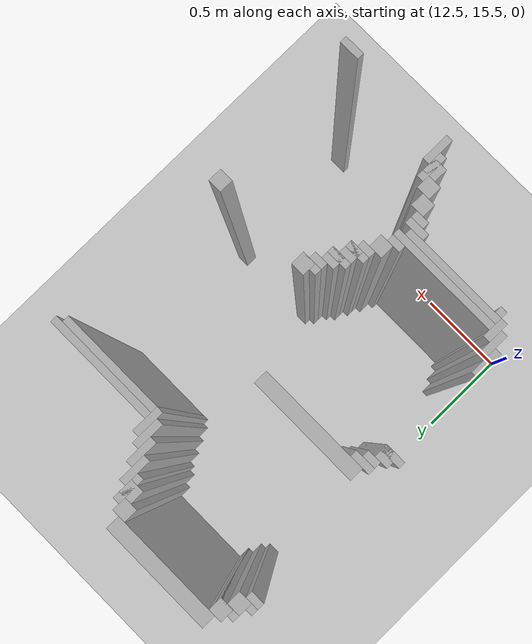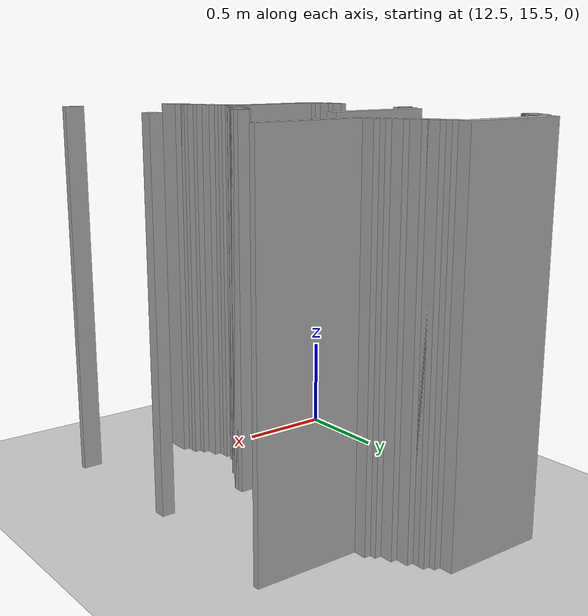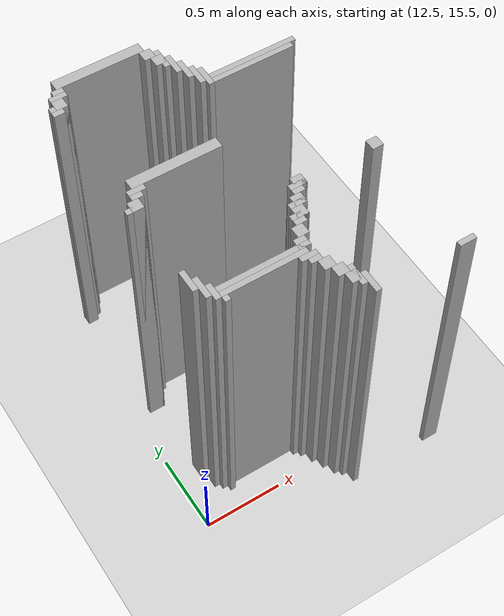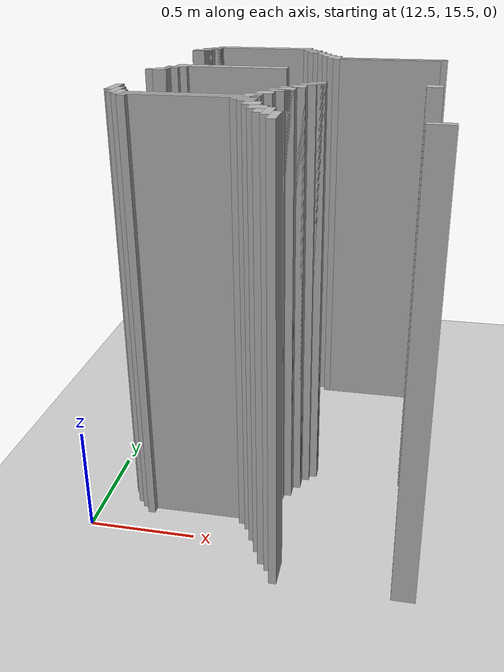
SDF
<sdf version="1.6">
 <world name="slam_world">
  <model name="ground_plane">
   <static>true</static>
   <link name="link">
    <collision name="collision">
     <geometry><plane><normal>0 0 1</normal><size>100 100</size></plane></geometry>
    </collision>
    <visual name="visual">
     <geometry><plane><normal>0 0 1</normal><size>100 100</size></plane></geometry>
     <material>
      <ambient>0.8 0.8 0.8 1</ambient>
      <diffuse>0.8 0.8 0.8 1</diffuse>
      <specular>0.8 0.8 0.8 1</specular>
     </material>
    </visual>
   </link>
  </model>
  <model name="wall_9">
   <static>true</static>
   <pose>12.981438515081207 17.366589327146173 1.0 0 0 0</pose>
   <link name="link">
    <collision name="collision">
     <geometry><box><size>0.5568445475638051 0.06960556844547564 2.0</size></box></geometry>
    </collision>
    <visual name="visual">
     <geometry><box><size>0.5568445475638051 0.06960556844547564 2.0</size></box></geometry>
     <material><ambient>0.5 0.5 0.5 1</ambient><diffuse>0.7 0.7 0.7 1</diffuse></material>
    </visual>
   </link>
  </model>
  <model name="wall_27">
   <static>true</static>
   <pose>12.703016241299304 17.296983758700694 1.0 0 0 0</pose>
   <link name="link">
    <collision name="collision">
     <geometry><box><size>0.06960556844547564 0.06960556844547564 2.0</size></box></geometry>
    </collision>
    <visual name="visual">
     <geometry><box><size>0.06960556844547564 0.06960556844547564 2.0</size></box></geometry>
     <material><ambient>0.5 0.5 0.5 1</ambient><diffuse>0.7 0.7 0.7 1</diffuse></material>
    </visual>
   </link>
  </model>
  <model name="wall_28">
   <static>true</static>
   <pose>13.259860788863108 17.296983758700694 1.0 0 0 0</pose>
   <link name="link">
    <collision name="collision">
     <geometry><box><size>0.06960556844547564 0.06960556844547564 2.0</size></box></geometry>
    </collision>
    <visual name="visual">
     <geometry><box><size>0.06960556844547564 0.06960556844547564 2.0</size></box></geometry>
     <material><ambient>0.5 0.5 0.5 1</ambient><diffuse>0.7 0.7 0.7 1</diffuse></material>
    </visual>
   </link>
  </model>
  <model name="wall_47">
   <static>true</static>
   <pose>12.685614849187935 17.279582366589327 1.0 0 0 0</pose>
   <link name="link">
    <collision name="collision">
     <geometry><box><size>0.10440835266821345 0.03480278422273782 2.0</size></box></geometry>
    </collision>
    <visual name="visual">
     <geometry><box><size>0.10440835266821345 0.03480278422273782 2.0</size></box></geometry>
     <material><ambient>0.5 0.5 0.5 1</ambient><diffuse>0.7 0.7 0.7 1</diffuse></material>
    </visual>
   </link>
  </model>
  <model name="wall_48">
   <static>true</static>
   <pose>13.312064965197216 17.22737819025522 1.0 0 0 0</pose>
   <link name="link">
    <collision name="collision">
     <geometry><box><size>0.03480278422273782 0.13921113689095127 2.0</size></box></geometry>
    </collision>
    <visual name="visual">
     <geometry><box><size>0.03480278422273782 0.13921113689095127 2.0</size></box></geometry>
     <material><ambient>0.5 0.5 0.5 1</ambient><diffuse>0.7 0.7 0.7 1</diffuse></material>
    </visual>
   </link>
  </model>
  <model name="wall_67">
   <static>true</static>
   <pose>12.668213457076565 17.22737819025522 1.0 0 0 0</pose>
   <link name="link">
    <collision name="collision">
     <geometry><box><size>0.06960556844547564 0.06960556844547564 2.0</size></box></geometry>
    </collision>
    <visual name="visual">
     <geometry><box><size>0.06960556844547564 0.06960556844547564 2.0</size></box></geometry>
     <material><ambient>0.5 0.5 0.5 1</ambient><diffuse>0.7 0.7 0.7 1</diffuse></material>
    </visual>
   </link>
  </model>
  <model name="wall_68">
   <static>true</static>
   <pose>13.294663573085847 17.22737819025522 1.0 0 0 0</pose>
   <link name="link">
    <collision name="collision">
     <geometry><box><size>0.06960556844547564 0.06960556844547564 2.0</size></box></geometry>
    </collision>
    <visual name="visual">
     <geometry><box><size>0.06960556844547564 0.06960556844547564 2.0</size></box></geometry>
     <material><ambient>0.5 0.5 0.5 1</ambient><diffuse>0.7 0.7 0.7 1</diffuse></material>
    </visual>
   </link>
  </model>
  <model name="wall_87">
   <static>true</static>
   <pose>12.650812064965196 17.209976798143853 1.0 0 0 0</pose>
   <link name="link">
    <collision name="collision">
     <geometry><box><size>0.10440835266821345 0.03480278422273782 2.0</size></box></geometry>
    </collision>
    <visual name="visual">
     <geometry><box><size>0.10440835266821345 0.03480278422273782 2.0</size></box></geometry>
     <material><ambient>0.5 0.5 0.5 1</ambient><diffuse>0.7 0.7 0.7 1</diffuse></material>
    </visual>
   </link>
  </model>
  <model name="wall_88">
   <static>true</static>
   <pose>13.346867749419953 17.157772621809745 1.0 0 0 0</pose>
   <link name="link">
    <collision name="collision">
     <geometry><box><size>0.03480278422273782 0.13921113689095127 2.0</size></box></geometry>
    </collision>
    <visual name="visual">
     <geometry><box><size>0.03480278422273782 0.13921113689095127 2.0</size></box></geometry>
     <material><ambient>0.5 0.5 0.5 1</ambient><diffuse>0.7 0.7 0.7 1</diffuse></material>
    </visual>
   </link>
  </model>
  <model name="wall_99">
   <static>true</static>
   <pose>12.633410672853827 17.17517401392111 1.0 0 0 0</pose>
   <link name="link">
    <collision name="collision">
     <geometry><box><size>0.06960556844547564 0.03480278422273782 2.0</size></box></geometry>
    </collision>
    <visual name="visual">
     <geometry><box><size>0.06960556844547564 0.03480278422273782 2.0</size></box></geometry>
     <material><ambient>0.5 0.5 0.5 1</ambient><diffuse>0.7 0.7 0.7 1</diffuse></material>
    </visual>
   </link>
  </model>
  <model name="wall_118">
   <static>true</static>
   <pose>13.38167053364269 17.08816705336427 1.0 0 0 0</pose>
   <link name="link">
    <collision name="collision">
     <geometry><box><size>0.03480278422273782 0.13921113689095127 2.0</size></box></geometry>
    </collision>
    <visual name="visual">
     <geometry><box><size>0.03480278422273782 0.13921113689095127 2.0</size></box></geometry>
     <material><ambient>0.5 0.5 0.5 1</ambient><diffuse>0.7 0.7 0.7 1</diffuse></material>
    </visual>
   </link>
  </model>
  <model name="wall_138">
   <static>true</static>
   <pose>13.416473317865428 17.01856148491879 1.0 0 0 0</pose>
   <link name="link">
    <collision name="collision">
     <geometry><box><size>0.03480278422273782 0.13921113689095127 2.0</size></box></geometry>
    </collision>
    <visual name="visual">
     <geometry><box><size>0.03480278422273782 0.13921113689095127 2.0</size></box></geometry>
     <material><ambient>0.5 0.5 0.5 1</ambient><diffuse>0.7 0.7 0.7 1</diffuse></material>
    </visual>
   </link>
  </model>
  <model name="wall_158">
   <static>true</static>
   <pose>13.451276102088167 16.983758700696054 1.0 0 0 0</pose>
   <link name="link">
    <collision name="collision">
     <geometry><box><size>0.03480278422273782 0.13921113689095127 2.0</size></box></geometry>
    </collision>
    <visual name="visual">
     <geometry><box><size>0.03480278422273782 0.13921113689095127 2.0</size></box></geometry>
     <material><ambient>0.5 0.5 0.5 1</ambient><diffuse>0.7 0.7 0.7 1</diffuse></material>
    </visual>
   </link>
  </model>
  <model name="wall_180">
   <static>true</static>
   <pose>13.747099767981437 16.966357308584687 1.0 0 0 0</pose>
   <link name="link">
    <collision name="collision">
     <geometry><box><size>0.5568445475638051 0.03480278422273782 2.0</size></box></geometry>
    </collision>
    <visual name="visual">
     <geometry><box><size>0.5568445475638051 0.03480278422273782 2.0</size></box></geometry>
     <material><ambient>0.5 0.5 0.5 1</ambient><diffuse>0.7 0.7 0.7 1</diffuse></material>
    </visual>
   </link>
  </model>
  <model name="wall_191">
   <static>true</static>
   <pose>13.729698375870068 16.93155452436195 1.0 0 0 0</pose>
   <link name="link">
    <collision name="collision">
     <geometry><box><size>0.5220417633410672 0.03480278422273782 2.0</size></box></geometry>
    </collision>
    <visual name="visual">
     <geometry><box><size>0.5220417633410672 0.03480278422273782 2.0</size></box></geometry>
     <material><ambient>0.5 0.5 0.5 1</ambient><diffuse>0.7 0.7 0.7 1</diffuse></material>
    </visual>
   </link>
  </model>
  <model name="wall_273">
   <static>true</static>
   <pose>12.981438515081207 16.531322505800464 1.0 0 0 0</pose>
   <link name="link">
    <collision name="collision">
     <geometry><box><size>0.5568445475638051 0.06960556844547564 2.0</size></box></geometry>
    </collision>
    <visual name="visual">
     <geometry><box><size>0.5568445475638051 0.06960556844547564 2.0</size></box></geometry>
     <material><ambient>0.5 0.5 0.5 1</ambient><diffuse>0.7 0.7 0.7 1</diffuse></material>
    </visual>
   </link>
  </model>
  <model name="wall_291">
   <static>true</static>
   <pose>12.720417633410673 16.479118329466356 1.0 0 0 0</pose>
   <link name="link">
    <collision name="collision">
     <geometry><box><size>0.10440835266821345 0.03480278422273782 2.0</size></box></geometry>
    </collision>
    <visual name="visual">
     <geometry><box><size>0.10440835266821345 0.03480278422273782 2.0</size></box></geometry>
     <material><ambient>0.5 0.5 0.5 1</ambient><diffuse>0.7 0.7 0.7 1</diffuse></material>
    </visual>
   </link>
  </model>
  <model name="wall_302">
   <static>true</static>
   <pose>12.703016241299304 16.44431554524362 1.0 0 0 0</pose>
   <link name="link">
    <collision name="collision">
     <geometry><box><size>0.06960556844547564 0.03480278422273782 2.0</size></box></geometry>
    </collision>
    <visual name="visual">
     <geometry><box><size>0.06960556844547564 0.03480278422273782 2.0</size></box></geometry>
     <material><ambient>0.5 0.5 0.5 1</ambient><diffuse>0.7 0.7 0.7 1</diffuse></material>
    </visual>
   </link>
  </model>
  <model name="wall_314">
   <static>true</static>
   <pose>12.668213457076565 16.39211136890951 1.0 0 0 0</pose>
   <link name="link">
    <collision name="collision">
     <geometry><box><size>0.06960556844547564 0.06960556844547564 2.0</size></box></geometry>
    </collision>
    <visual name="visual">
     <geometry><box><size>0.06960556844547564 0.06960556844547564 2.0</size></box></geometry>
     <material><ambient>0.5 0.5 0.5 1</ambient><diffuse>0.7 0.7 0.7 1</diffuse></material>
    </visual>
   </link>
  </model>
  <model name="wall_328">
   <static>true</static>
   <pose>12.650812064965196 16.374709976798144 1.0 0 0 0</pose>
   <link name="link">
    <collision name="collision">
     <geometry><box><size>0.10440835266821345 0.03480278422273782 2.0</size></box></geometry>
    </collision>
    <visual name="visual">
     <geometry><box><size>0.10440835266821345 0.03480278422273782 2.0</size></box></geometry>
     <material><ambient>0.5 0.5 0.5 1</ambient><diffuse>0.7 0.7 0.7 1</diffuse></material>
    </visual>
   </link>
  </model>
  <model name="wall_426">
   <static>true</static>
   <pose>13.468677494199536 16.07888631090487 1.0 0 0 0</pose>
   <link name="link">
    <collision name="collision">
     <geometry><box><size>0.06960556844547564 0.06960556844547564 2.0</size></box></geometry>
    </collision>
    <visual name="visual">
     <geometry><box><size>0.06960556844547564 0.06960556844547564 2.0</size></box></geometry>
     <material><ambient>0.5 0.5 0.5 1</ambient><diffuse>0.7 0.7 0.7 1</diffuse></material>
    </visual>
   </link>
  </model>
  <model name="wall_427">
   <static>true</static>
   <pose>13.955916473317865 16.07888631090487 1.0 0 0 0</pose>
   <link name="link">
    <collision name="collision">
     <geometry><box><size>0.06960556844547564 0.06960556844547564 2.0</size></box></geometry>
    </collision>
    <visual name="visual">
     <geometry><box><size>0.06960556844547564 0.06960556844547564 2.0</size></box></geometry>
     <material><ambient>0.5 0.5 0.5 1</ambient><diffuse>0.7 0.7 0.7 1</diffuse></material>
    </visual>
   </link>
  </model>
  <model name="wall_439">
   <static>true</static>
   <pose>13.451276102088167 16.061484918793504 1.0 0 0 0</pose>
   <link name="link">
    <collision name="collision">
     <geometry><box><size>0.10440835266821345 0.03480278422273782 2.0</size></box></geometry>
    </collision>
    <visual name="visual">
     <geometry><box><size>0.10440835266821345 0.03480278422273782 2.0</size></box></geometry>
     <material><ambient>0.5 0.5 0.5 1</ambient><diffuse>0.7 0.7 0.7 1</diffuse></material>
    </visual>
   </link>
  </model>
  <model name="wall_453">
   <static>true</static>
   <pose>13.433874709976797 16.026682134570766 1.0 0 0 0</pose>
   <link name="link">
    <collision name="collision">
     <geometry><box><size>0.06960556844547564 0.03480278422273782 2.0</size></box></geometry>
    </collision>
    <visual name="visual">
     <geometry><box><size>0.06960556844547564 0.03480278422273782 2.0</size></box></geometry>
     <material><ambient>0.5 0.5 0.5 1</ambient><diffuse>0.7 0.7 0.7 1</diffuse></material>
    </visual>
   </link>
  </model>
  <model name="wall_467">
   <static>true</static>
   <pose>13.39907192575406 15.974477958236658 1.0 0 0 0</pose>
   <link name="link">
    <collision name="collision">
     <geometry><box><size>0.06960556844547564 0.06960556844547564 2.0</size></box></geometry>
    </collision>
    <visual name="visual">
     <geometry><box><size>0.06960556844547564 0.06960556844547564 2.0</size></box></geometry>
     <material><ambient>0.5 0.5 0.5 1</ambient><diffuse>0.7 0.7 0.7 1</diffuse></material>
    </visual>
   </link>
  </model>
  <model name="wall_481">
   <static>true</static>
   <pose>13.38167053364269 15.95707656612529 1.0 0 0 0</pose>
   <link name="link">
    <collision name="collision">
     <geometry><box><size>0.10440835266821345 0.03480278422273782 2.0</size></box></geometry>
    </collision>
    <visual name="visual">
     <geometry><box><size>0.10440835266821345 0.03480278422273782 2.0</size></box></geometry>
     <material><ambient>0.5 0.5 0.5 1</ambient><diffuse>0.7 0.7 0.7 1</diffuse></material>
    </visual>
   </link>
  </model>
  <model name="wall_492">
   <static>true</static>
   <pose>13.364269141531322 15.904872389791183 1.0 0 0 0</pose>
   <link name="link">
    <collision name="collision">
     <geometry><box><size>0.06960556844547564 0.06960556844547564 2.0</size></box></geometry>
    </collision>
    <visual name="visual">
     <geometry><box><size>0.06960556844547564 0.06960556844547564 2.0</size></box></geometry>
     <material><ambient>0.5 0.5 0.5 1</ambient><diffuse>0.7 0.7 0.7 1</diffuse></material>
    </visual>
   </link>
  </model>
  <model name="wall_504">
   <static>true</static>
   <pose>12.650812064965196 15.835266821345707 1.0 0 0 0</pose>
   <link name="link">
    <collision name="collision">
     <geometry><box><size>0.03480278422273782 0.13921113689095127 2.0</size></box></geometry>
    </collision>
    <visual name="visual">
     <geometry><box><size>0.03480278422273782 0.13921113689095127 2.0</size></box></geometry>
     <material><ambient>0.5 0.5 0.5 1</ambient><diffuse>0.7 0.7 0.7 1</diffuse></material>
    </visual>
   </link>
  </model>
  <model name="wall_505">
   <static>true</static>
   <pose>13.346867749419953 15.887470997679813 1.0 0 0 0</pose>
   <link name="link">
    <collision name="collision">
     <geometry><box><size>0.10440835266821345 0.03480278422273782 2.0</size></box></geometry>
    </collision>
    <visual name="visual">
     <geometry><box><size>0.10440835266821345 0.03480278422273782 2.0</size></box></geometry>
     <material><ambient>0.5 0.5 0.5 1</ambient><diffuse>0.7 0.7 0.7 1</diffuse></material>
    </visual>
   </link>
  </model>
  <model name="wall_514">
   <static>true</static>
   <pose>13.329466357308585 15.852668213457076 1.0 0 0 0</pose>
   <link name="link">
    <collision name="collision">
     <geometry><box><size>0.06960556844547564 0.03480278422273782 2.0</size></box></geometry>
    </collision>
    <visual name="visual">
     <geometry><box><size>0.06960556844547564 0.03480278422273782 2.0</size></box></geometry>
     <material><ambient>0.5 0.5 0.5 1</ambient><diffuse>0.7 0.7 0.7 1</diffuse></material>
    </visual>
   </link>
  </model>
  <model name="wall_526">
   <static>true</static>
   <pose>12.685614849187935 15.765661252900232 1.0 0 0 0</pose>
   <link name="link">
    <collision name="collision">
     <geometry><box><size>0.03480278422273782 0.13921113689095127 2.0</size></box></geometry>
    </collision>
    <visual name="visual">
     <geometry><box><size>0.03480278422273782 0.13921113689095127 2.0</size></box></geometry>
     <material><ambient>0.5 0.5 0.5 1</ambient><diffuse>0.7 0.7 0.7 1</diffuse></material>
    </visual>
   </link>
  </model>
  <model name="wall_527">
   <static>true</static>
   <pose>13.294663573085847 15.80046403712297 1.0 0 0 0</pose>
   <link name="link">
    <collision name="collision">
     <geometry><box><size>0.06960556844547564 0.06960556844547564 2.0</size></box></geometry>
    </collision>
    <visual name="visual">
     <geometry><box><size>0.06960556844547564 0.06960556844547564 2.0</size></box></geometry>
     <material><ambient>0.5 0.5 0.5 1</ambient><diffuse>0.7 0.7 0.7 1</diffuse></material>
    </visual>
   </link>
  </model>
  <model name="wall_540">
   <static>true</static>
   <pose>12.720417633410673 15.713457076566124 1.0 0 0 0</pose>
   <link name="link">
    <collision name="collision">
     <geometry><box><size>0.03480278422273782 0.10440835266821345 2.0</size></box></geometry>
    </collision>
    <visual name="visual">
     <geometry><box><size>0.03480278422273782 0.10440835266821345 2.0</size></box></geometry>
     <material><ambient>0.5 0.5 0.5 1</ambient><diffuse>0.7 0.7 0.7 1</diffuse></material>
    </visual>
   </link>
  </model>
  <model name="wall_541">
   <static>true</static>
   <pose>13.259860788863108 15.730858468677493 1.0 0 0 0</pose>
   <link name="link">
    <collision name="collision">
     <geometry><box><size>0.06960556844547564 0.06960556844547564 2.0</size></box></geometry>
    </collision>
    <visual name="visual">
     <geometry><box><size>0.06960556844547564 0.06960556844547564 2.0</size></box></geometry>
     <material><ambient>0.5 0.5 0.5 1</ambient><diffuse>0.7 0.7 0.7 1</diffuse></material>
    </visual>
   </link>
  </model>
  <model name="wall_553">
   <static>true</static>
   <pose>13.016241299303944 15.713457076566124 1.0 0 0 0</pose>
   <link name="link">
    <collision name="collision">
     <geometry><box><size>0.5568445475638051 0.03480278422273782 2.0</size></box></geometry>
    </collision>
    <visual name="visual">
     <geometry><box><size>0.5568445475638051 0.03480278422273782 2.0</size></box></geometry>
     <material><ambient>0.5 0.5 0.5 1</ambient><diffuse>0.7 0.7 0.7 1</diffuse></material>
    </visual>
   </link>
  </model>
  <model name="wall_567">
   <static>true</static>
   <pose>12.998839907192576 15.678654292343387 1.0 0 0 0</pose>
   <link name="link">
    <collision name="collision">
     <geometry><box><size>0.5220417633410672 0.03480278422273782 2.0</size></box></geometry>
    </collision>
    <visual name="visual">
     <geometry><box><size>0.5220417633410672 0.03480278422273782 2.0</size></box></geometry>
     <material><ambient>0.5 0.5 0.5 1</ambient><diffuse>0.7 0.7 0.7 1</diffuse></material>
    </visual>
   </link>
  </model>
  <model name="wall_585">
   <static>true</static>
   <pose>12.75522041763341 15.64385150812065 1.0 0 0 0</pose>
   <link name="link">
    <collision name="collision">
     <geometry><box><size>0.03480278422273782 0.03480278422273782 2.0</size></box></geometry>
    </collision>
    <visual name="visual">
     <geometry><box><size>0.03480278422273782 0.03480278422273782 2.0</size></box></geometry>
     <material><ambient>0.5 0.5 0.5 1</ambient><diffuse>0.7 0.7 0.7 1</diffuse></material>
    </visual>
   </link>
  </model>
  <model name="wall_586">
   <static>true</static>
   <pose>13.24245939675174 15.64385150812065 1.0 0 0 0</pose>
   <link name="link">
    <collision name="collision">
     <geometry><box><size>0.10440835266821345 0.03480278422273782 2.0</size></box></geometry>
    </collision>
    <visual name="visual">
     <geometry><box><size>0.10440835266821345 0.03480278422273782 2.0</size></box></geometry>
     <material><ambient>0.5 0.5 0.5 1</ambient><diffuse>0.7 0.7 0.7 1</diffuse></material>
    </visual>
   </link>
  </model>
  <model name="wall_603">
   <static>true</static>
   <pose>13.259860788863108 15.609048723897912 1.0 0 0 0</pose>
   <link name="link">
    <collision name="collision">
     <geometry><box><size>0.06960556844547564 0.03480278422273782 2.0</size></box></geometry>
    </collision>
    <visual name="visual">
     <geometry><box><size>0.06960556844547564 0.03480278422273782 2.0</size></box></geometry>
     <material><ambient>0.5 0.5 0.5 1</ambient><diffuse>0.7 0.7 0.7 1</diffuse></material>
    </visual>
   </link>
  </model>
  <model name="wall_620">
   <static>true</static>
   <pose>13.294663573085847 15.556844547563804 1.0 0 0 0</pose>
   <link name="link">
    <collision name="collision">
     <geometry><box><size>0.06960556844547564 0.06960556844547564 2.0</size></box></geometry>
    </collision>
    <visual name="visual">
     <geometry><box><size>0.06960556844547564 0.06960556844547564 2.0</size></box></geometry>
     <material><ambient>0.5 0.5 0.5 1</ambient><diffuse>0.7 0.7 0.7 1</diffuse></material>
    </visual>
   </link>
  </model>
  <model name="wall_637">
   <static>true</static>
   <pose>13.329466357308585 15.48723897911833 1.0 0 0 0</pose>
   <link name="link">
    <collision name="collision">
     <geometry><box><size>0.06960556844547564 0.06960556844547564 2.0</size></box></geometry>
    </collision>
    <visual name="visual">
     <geometry><box><size>0.06960556844547564 0.06960556844547564 2.0</size></box></geometry>
     <material><ambient>0.5 0.5 0.5 1</ambient><diffuse>0.7 0.7 0.7 1</diffuse></material>
    </visual>
   </link>
  </model>
  <model name="wall_654">
   <static>true</static>
   <pose>13.38167053364269 15.417633410672853 1.0 0 0 0</pose>
   <link name="link">
    <collision name="collision">
     <geometry><box><size>0.03480278422273782 0.13921113689095127 2.0</size></box></geometry>
    </collision>
    <visual name="visual">
     <geometry><box><size>0.03480278422273782 0.13921113689095127 2.0</size></box></geometry>
     <material><ambient>0.5 0.5 0.5 1</ambient><diffuse>0.7 0.7 0.7 1</diffuse></material>
    </visual>
   </link>
  </model>
  <model name="wall_667">
   <static>true</static>
   <pose>13.364269141531322 15.417633410672853 1.0 0 0 0</pose>
   <link name="link">
    <collision name="collision">
     <geometry><box><size>0.06960556844547564 0.06960556844547564 2.0</size></box></geometry>
    </collision>
    <visual name="visual">
     <geometry><box><size>0.06960556844547564 0.06960556844547564 2.0</size></box></geometry>
     <material><ambient>0.5 0.5 0.5 1</ambient><diffuse>0.7 0.7 0.7 1</diffuse></material>
    </visual>
   </link>
  </model>
  <model name="wall_683">
   <static>true</static>
   <pose>13.416473317865428 15.348027842227378 1.0 0 0 0</pose>
   <link name="link">
    <collision name="collision">
     <geometry><box><size>0.03480278422273782 0.13921113689095127 2.0</size></box></geometry>
    </collision>
    <visual name="visual">
     <geometry><box><size>0.03480278422273782 0.13921113689095127 2.0</size></box></geometry>
     <material><ambient>0.5 0.5 0.5 1</ambient><diffuse>0.7 0.7 0.7 1</diffuse></material>
    </visual>
   </link>
  </model>
  <model name="wall_726">
   <static>true</static>
   <pose>13.973317865429234 15.295823665893272 1.0 0 0 0</pose>
   <link name="link">
    <collision name="collision">
     <geometry><box><size>0.10440835266821345 0.03480278422273782 2.0</size></box></geometry>
    </collision>
    <visual name="visual">
     <geometry><box><size>0.10440835266821345 0.03480278422273782 2.0</size></box></geometry>
     <material><ambient>0.5 0.5 0.5 1</ambient><diffuse>0.7 0.7 0.7 1</diffuse></material>
    </visual>
   </link>
  </model>
 </world>
</sdf>
